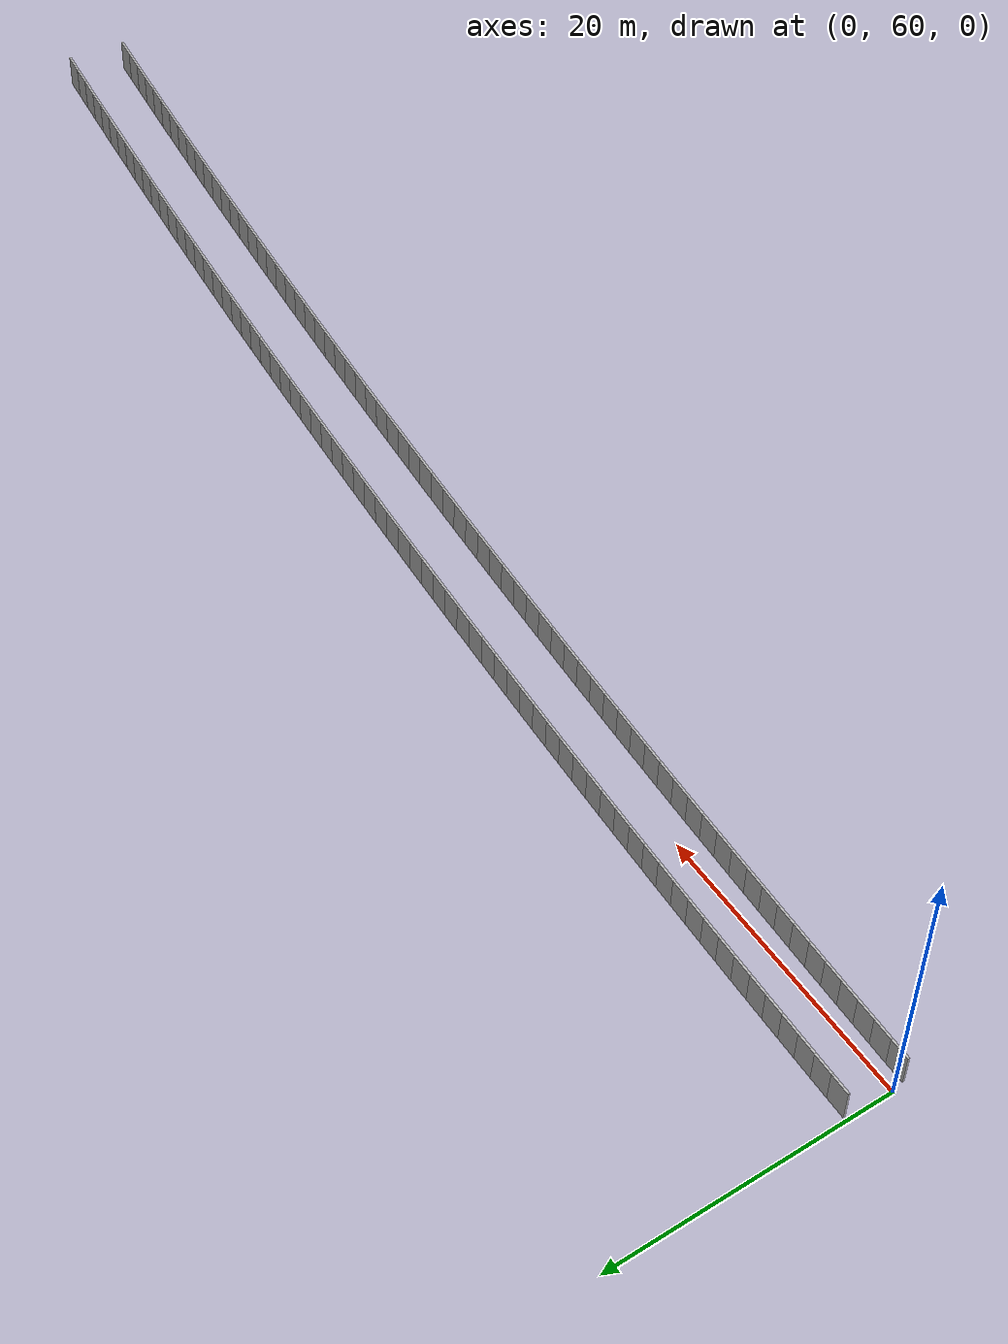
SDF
<sdf version="1.6">
 <model name="sps_1223">
  <static>1</static>
  <allow_auto_disable>0</allow_auto_disable>
  <link name="Wall2825">
   <collision name="collision"><geometry><box><size>1.49657 0.15 2.5</size></box></geometry></collision>
   <visual name="visual">
    <geometry><box><size>1.49657 0.15 2.5</size></box></geometry>
    <transparency>0.0</transparency>
   </visual>
   <pose>99.431 52.0302 1.25 0 -0 3.01741</pose>
  </link>
  <link name="Wall2826">
   <collision name="collision"><geometry><box><size>1.49641 0.15 2.5</size></box></geometry></collision>
   <visual name="visual">
    <geometry><box><size>1.49641 0.15 2.5</size></box></geometry>
    <transparency>0.0</transparency>
   </visual>
   <pose>97.9459 52.2144 1.25 0 -0 3.01896</pose>
  </link>
  <link name="Wall2827">
   <collision name="collision"><geometry><box><size>1.49656 0.15 2.5</size></box></geometry></collision>
   <visual name="visual">
    <geometry><box><size>1.49656 0.15 2.5</size></box></geometry>
    <transparency>0.0</transparency>
   </visual>
   <pose>96.4605 52.3963 1.25 0 -0 3.0205</pose>
  </link>
  <link name="Wall2828">
   <collision name="collision"><geometry><box><size>1.49651 0.15 2.5</size></box></geometry></collision>
   <visual name="visual">
    <geometry><box><size>1.49651 0.15 2.5</size></box></geometry>
    <transparency>0.0</transparency>
   </visual>
   <pose>94.9748 52.5759 1.25 0 -0 3.02209</pose>
  </link>
  <link name="Wall2829">
   <collision name="collision"><geometry><box><size>1.49664 0.15 2.5</size></box></geometry></collision>
   <visual name="visual">
    <geometry><box><size>1.49664 0.15 2.5</size></box></geometry>
    <transparency>0.0</transparency>
   </visual>
   <pose>93.4887 52.7533 1.25 0 -0 3.02346</pose>
  </link>
  <link name="Wall2830">
   <collision name="collision"><geometry><box><size>1.49649 0.15 2.5</size></box></geometry></collision>
   <visual name="visual">
    <geometry><box><size>1.49649 0.15 2.5</size></box></geometry>
    <transparency>0.0</transparency>
   </visual>
   <pose>92.0024 52.9283 1.25 0 -0 3.02534</pose>
  </link>
  <link name="Wall2831">
   <collision name="collision"><geometry><box><size>1.49624 0.15 2.5</size></box></geometry></collision>
   <visual name="visual">
    <geometry><box><size>1.49624 0.15 2.5</size></box></geometry>
    <transparency>0.0</transparency>
   </visual>
   <pose>90.516 53.1008 1.25 0 -0 3.0268</pose>
  </link>
  <link name="Wall2832">
   <collision name="collision"><geometry><box><size>1.49655 0.15 2.5</size></box></geometry></collision>
   <visual name="visual">
    <geometry><box><size>1.49655 0.15 2.5</size></box></geometry>
    <transparency>0.0</transparency>
   </visual>
   <pose>89.0293 53.2709 1.25 0 -0 3.02854</pose>
  </link>
  <link name="Wall2833">
   <collision name="collision"><geometry><box><size>1.49648 0.15 2.5</size></box></geometry></collision>
   <visual name="visual">
    <geometry><box><size>1.49648 0.15 2.5</size></box></geometry>
    <transparency>0.0</transparency>
   </visual>
   <pose>87.5423 53.4386 1.25 0 -0 3.03006</pose>
  </link>
  <link name="Wall2834">
   <collision name="collision"><geometry><box><size>1.49647 0.15 2.5</size></box></geometry></collision>
   <visual name="visual">
    <geometry><box><size>1.49647 0.15 2.5</size></box></geometry>
    <transparency>0.0</transparency>
   </visual>
   <pose>86.055 53.604 1.25 0 -0 3.03162</pose>
  </link>
  <link name="Wall2835">
   <collision name="collision"><geometry><box><size>1.49659 0.15 2.5</size></box></geometry></collision>
   <visual name="visual">
    <geometry><box><size>1.49659 0.15 2.5</size></box></geometry>
    <transparency>0.0</transparency>
   </visual>
   <pose>84.5673 53.7671 1.25 0 -0 3.03314</pose>
  </link>
  <link name="Wall2836">
   <collision name="collision"><geometry><box><size>1.49649 0.15 2.5</size></box></geometry></collision>
   <visual name="visual">
    <geometry><box><size>1.49649 0.15 2.5</size></box></geometry>
    <transparency>0.0</transparency>
   </visual>
   <pose>83.0795 53.9278 1.25 0 -0 3.03486</pose>
  </link>
  <link name="Wall2837">
   <collision name="collision"><geometry><box><size>1.49652 0.15 2.5</size></box></geometry></collision>
   <visual name="visual">
    <geometry><box><size>1.49652 0.15 2.5</size></box></geometry>
    <transparency>0.0</transparency>
   </visual>
   <pose>81.5914 54.0862 1.25 0 -0 3.03625</pose>
  </link>
  <link name="Wall2838">
   <collision name="collision"><geometry><box><size>1.49659 0.15 2.5</size></box></geometry></collision>
   <visual name="visual">
    <geometry><box><size>1.49659 0.15 2.5</size></box></geometry>
    <transparency>0.0</transparency>
   </visual>
   <pose>80.103 54.2422 1.25 0 -0 3.03811</pose>
  </link>
  <link name="Wall2839">
   <collision name="collision"><geometry><box><size>1.49664 0.15 2.5</size></box></geometry></collision>
   <visual name="visual">
    <geometry><box><size>1.49664 0.15 2.5</size></box></geometry>
    <transparency>0.0</transparency>
   </visual>
   <pose>78.6142 54.3958 1.25 0 -0 3.03942</pose>
  </link>
  <link name="Wall2840">
   <collision name="collision"><geometry><box><size>1.4963 0.15 2.5</size></box></geometry></collision>
   <visual name="visual">
    <geometry><box><size>1.4963 0.15 2.5</size></box></geometry>
    <transparency>0.0</transparency>
   </visual>
   <pose>77.1254 54.5471 1.25 0 -0 3.0412</pose>
  </link>
  <link name="Wall2841">
   <collision name="collision"><geometry><box><size>1.49649 0.15 2.5</size></box></geometry></collision>
   <visual name="visual">
    <geometry><box><size>1.49649 0.15 2.5</size></box></geometry>
    <transparency>0.0</transparency>
   </visual>
   <pose>75.6365 54.6959 1.25 0 -0 3.04281</pose>
  </link>
  <link name="Wall2842">
   <collision name="collision"><geometry><box><size>1.49653 0.15 2.5</size></box></geometry></collision>
   <visual name="visual">
    <geometry><box><size>1.49653 0.15 2.5</size></box></geometry>
    <transparency>0.0</transparency>
   </visual>
   <pose>74.1471 54.8424 1.25 0 -0 3.04425</pose>
  </link>
  <link name="Wall2843">
   <collision name="collision"><geometry><box><size>1.49641 0.15 2.5</size></box></geometry></collision>
   <visual name="visual">
    <geometry><box><size>1.49641 0.15 2.5</size></box></geometry>
    <transparency>0.0</transparency>
   </visual>
   <pose>72.6576 54.9866 1.25 0 -0 3.04588</pose>
  </link>
  <link name="Wall2844">
   <collision name="collision"><geometry><box><size>1.49662 0.15 2.5</size></box></geometry></collision>
   <visual name="visual">
    <geometry><box><size>1.49662 0.15 2.5</size></box></geometry>
    <transparency>0.0</transparency>
   </visual>
   <pose>71.1679 55.1285 1.25 0 -0 3.04741</pose>
  </link>
  <link name="Wall2845">
   <collision name="collision"><geometry><box><size>1.49641 0.15 2.5</size></box></geometry></collision>
   <visual name="visual">
    <geometry><box><size>1.49641 0.15 2.5</size></box></geometry>
    <transparency>0.0</transparency>
   </visual>
   <pose>69.6779 55.2681 1.25 0 -0 3.04895</pose>
  </link>
  <link name="Wall2846">
   <collision name="collision"><geometry><box><size>1.49643 0.15 2.5</size></box></geometry></collision>
   <visual name="visual">
    <geometry><box><size>1.49643 0.15 2.5</size></box></geometry>
    <transparency>0.0</transparency>
   </visual>
   <pose>68.1878 55.4053 1.25 0 -0 3.05059</pose>
  </link>
  <link name="Wall2847">
   <collision name="collision"><geometry><box><size>1.49658 0.15 2.5</size></box></geometry></collision>
   <visual name="visual">
    <geometry><box><size>1.49658 0.15 2.5</size></box></geometry>
    <transparency>0.0</transparency>
   </visual>
   <pose>66.6973 55.5401 1.25 0 -0 3.0522</pose>
  </link>
  <link name="Wall2848">
   <collision name="collision"><geometry><box><size>1.49655 0.15 2.5</size></box></geometry></collision>
   <visual name="visual">
    <geometry><box><size>1.49655 0.15 2.5</size></box></geometry>
    <transparency>0.0</transparency>
   </visual>
   <pose>65.2067 55.6725 1.25 0 -0 3.05379</pose>
  </link>
  <link name="Wall2849">
   <collision name="collision"><geometry><box><size>1.49658 0.15 2.5</size></box></geometry></collision>
   <visual name="visual">
    <geometry><box><size>1.49658 0.15 2.5</size></box></geometry>
    <transparency>0.0</transparency>
   </visual>
   <pose>63.7158 55.8025 1.25 0 -0 3.05543</pose>
  </link>
  <link name="Wall2850">
   <collision name="collision"><geometry><box><size>1.49633 0.15 2.5</size></box></geometry></collision>
   <visual name="visual">
    <geometry><box><size>1.49633 0.15 2.5</size></box></geometry>
    <transparency>0.0</transparency>
   </visual>
   <pose>62.2248 55.9302 1.25 0 -0 3.05689</pose>
  </link>
  <link name="Wall2851">
   <collision name="collision"><geometry><box><size>1.49654 0.15 2.5</size></box></geometry></collision>
   <visual name="visual">
    <geometry><box><size>1.49654 0.15 2.5</size></box></geometry>
    <transparency>0.0</transparency>
   </visual>
   <pose>60.7336 56.0555 1.25 0 -0 3.05862</pose>
  </link>
  <link name="Wall2852">
   <collision name="collision"><geometry><box><size>1.4966 0.15 2.5</size></box></geometry></collision>
   <visual name="visual">
    <geometry><box><size>1.4966 0.15 2.5</size></box></geometry>
    <transparency>0.0</transparency>
   </visual>
   <pose>59.2421 56.1784 1.25 0 -0 3.06014</pose>
  </link>
  <link name="Wall2853">
   <collision name="collision"><geometry><box><size>1.49653 0.15 2.5</size></box></geometry></collision>
   <visual name="visual">
    <geometry><box><size>1.49653 0.15 2.5</size></box></geometry>
    <transparency>0.0</transparency>
   </visual>
   <pose>57.7504 56.299 1.25 0 -0 3.06169</pose>
  </link>
  <link name="Wall2854">
   <collision name="collision"><geometry><box><size>1.4964 0.15 2.5</size></box></geometry></collision>
   <visual name="visual">
    <geometry><box><size>1.4964 0.15 2.5</size></box></geometry>
    <transparency>0.0</transparency>
   </visual>
   <pose>56.2586 56.4172 1.25 0 -0 3.06332</pose>
  </link>
  <link name="Wall2855">
   <collision name="collision"><geometry><box><size>1.49659 0.15 2.5</size></box></geometry></collision>
   <visual name="visual">
    <geometry><box><size>1.49659 0.15 2.5</size></box></geometry>
    <transparency>0.0</transparency>
   </visual>
   <pose>54.7666 56.5331 1.25 0 -0 3.06485</pose>
  </link>
  <link name="Wall2856">
   <collision name="collision"><geometry><box><size>1.4964 0.15 2.5</size></box></geometry></collision>
   <visual name="visual">
    <geometry><box><size>1.4964 0.15 2.5</size></box></geometry>
    <transparency>0.0</transparency>
   </visual>
   <pose>53.2744 56.6466 1.25 0 -0 3.06651</pose>
  </link>
  <link name="Wall2857">
   <collision name="collision"><geometry><box><size>1.49648 0.15 2.5</size></box></geometry></collision>
   <visual name="visual">
    <geometry><box><size>1.49648 0.15 2.5</size></box></geometry>
    <transparency>0.0</transparency>
   </visual>
   <pose>51.7821 56.7577 1.25 0 -0 3.06803</pose>
  </link>
  <link name="Wall2858">
   <collision name="collision"><geometry><box><size>1.49648 0.15 2.5</size></box></geometry></collision>
   <visual name="visual">
    <geometry><box><size>1.49648 0.15 2.5</size></box></geometry>
    <transparency>0.0</transparency>
   </visual>
   <pose>50.2895 56.8664 1.25 0 -0 3.06975</pose>
  </link>
  <link name="Wall2859">
   <collision name="collision"><geometry><box><size>1.49651 0.15 2.5</size></box></geometry></collision>
   <visual name="visual">
    <geometry><box><size>1.49651 0.15 2.5</size></box></geometry>
    <transparency>0.0</transparency>
   </visual>
   <pose>48.7968 56.9728 1.25 0 -0 3.07114</pose>
  </link>
  <link name="Wall2860">
   <collision name="collision"><geometry><box><size>1.49653 0.15 2.5</size></box></geometry></collision>
   <visual name="visual">
    <geometry><box><size>1.49653 0.15 2.5</size></box></geometry>
    <transparency>0.0</transparency>
   </visual>
   <pose>47.3039 57.077 1.25 0 -0 3.07269</pose>
  </link>
  <link name="Wall2861">
   <collision name="collision"><geometry><box><size>1.4966 0.15 2.5</size></box></geometry></collision>
   <visual name="visual">
    <geometry><box><size>1.4966 0.15 2.5</size></box></geometry>
    <transparency>0.0</transparency>
   </visual>
   <pose>45.8108 57.1787 1.25 0 -0 3.07445</pose>
  </link>
  <link name="Wall2862">
   <collision name="collision"><geometry><box><size>1.49639 0.15 2.5</size></box></geometry></collision>
   <visual name="visual">
    <geometry><box><size>1.49639 0.15 2.5</size></box></geometry>
    <transparency>0.0</transparency>
   </visual>
   <pose>44.3176 57.278 1.25 0 -0 3.07592</pose>
  </link>
  <link name="Wall2863">
   <collision name="collision"><geometry><box><size>1.49648 0.15 2.5</size></box></geometry></collision>
   <visual name="visual">
    <geometry><box><size>1.49648 0.15 2.5</size></box></geometry>
    <transparency>0.0</transparency>
   </visual>
   <pose>42.8244 57.375 1.25 0 -0 3.07756</pose>
  </link>
  <link name="Wall2864">
   <collision name="collision"><geometry><box><size>1.49651 0.15 2.5</size></box></geometry></collision>
   <visual name="visual">
    <geometry><box><size>1.49651 0.15 2.5</size></box></geometry>
    <transparency>0.0</transparency>
   </visual>
   <pose>41.3309 57.4696 1.25 0 -0 3.07911</pose>
  </link>
  <link name="Wall2865">
   <collision name="collision"><geometry><box><size>1.4966 0.15 2.5</size></box></geometry></collision>
   <visual name="visual">
    <geometry><box><size>1.4966 0.15 2.5</size></box></geometry>
    <transparency>0.0</transparency>
   </visual>
   <pose>39.8371 57.5618 1.25 0 -0 3.08075</pose>
  </link>
  <link name="Wall2866">
   <collision name="collision"><geometry><box><size>1.4964 0.15 2.5</size></box></geometry></collision>
   <visual name="visual">
    <geometry><box><size>1.4964 0.15 2.5</size></box></geometry>
    <transparency>0.0</transparency>
   </visual>
   <pose>38.3433 57.6516 1.25 0 -0 3.08237</pose>
  </link>
  <link name="Wall2867">
   <collision name="collision"><geometry><box><size>1.49652 0.15 2.5</size></box></geometry></collision>
   <visual name="visual">
    <geometry><box><size>1.49652 0.15 2.5</size></box></geometry>
    <transparency>0.0</transparency>
   </visual>
   <pose>36.8494 57.7391 1.25 0 -0 3.08381</pose>
  </link>
  <link name="Wall2868">
   <collision name="collision"><geometry><box><size>1.49631 0.15 2.5</size></box></geometry></collision>
   <visual name="visual">
    <geometry><box><size>1.49631 0.15 2.5</size></box></geometry>
    <transparency>0.0</transparency>
   </visual>
   <pose>35.3555 57.8242 1.25 0 -0 3.08556</pose>
  </link>
  <link name="Wall2869">
   <collision name="collision"><geometry><box><size>1.49667 0.15 2.5</size></box></geometry></collision>
   <visual name="visual">
    <geometry><box><size>1.49667 0.15 2.5</size></box></geometry>
    <transparency>0.0</transparency>
   </visual>
   <pose>33.8613 57.9069 1.25 0 -0 3.08704</pose>
  </link>
  <link name="Wall2870">
   <collision name="collision"><geometry><box><size>1.49648 0.15 2.5</size></box></geometry></collision>
   <visual name="visual">
    <geometry><box><size>1.49648 0.15 2.5</size></box></geometry>
    <transparency>0.0</transparency>
   </visual>
   <pose>32.3668 57.9873 1.25 0 -0 3.08867</pose>
  </link>
  <link name="Wall2871">
   <collision name="collision"><geometry><box><size>1.49654 0.15 2.5</size></box></geometry></collision>
   <visual name="visual">
    <geometry><box><size>1.49654 0.15 2.5</size></box></geometry>
    <transparency>0.0</transparency>
   </visual>
   <pose>30.8724 58.0653 1.25 0 -0 3.09022</pose>
  </link>
  <link name="Wall2872">
   <collision name="collision"><geometry><box><size>1.49649 0.15 2.5</size></box></geometry></collision>
   <visual name="visual">
    <geometry><box><size>1.49649 0.15 2.5</size></box></geometry>
    <transparency>0.0</transparency>
   </visual>
   <pose>29.3778 58.141 1.25 0 -0 3.09173</pose>
  </link>
  <link name="Wall2873">
   <collision name="collision"><geometry><box><size>1.49655 0.15 2.5</size></box></geometry></collision>
   <visual name="visual">
    <geometry><box><size>1.49655 0.15 2.5</size></box></geometry>
    <transparency>0.0</transparency>
   </visual>
   <pose>27.883 58.2143 1.25 0 -0 3.09345</pose>
  </link>
  <link name="Wall2874">
   <collision name="collision"><geometry><box><size>1.49644 0.15 2.5</size></box></geometry></collision>
   <visual name="visual">
    <geometry><box><size>1.49644 0.15 2.5</size></box></geometry>
    <transparency>0.0</transparency>
   </visual>
   <pose>26.3882 58.2852 1.25 0 -0 3.09496</pose>
  </link>
  <link name="Wall2875">
   <collision name="collision"><geometry><box><size>1.49651 0.15 2.5</size></box></geometry></collision>
   <visual name="visual">
    <geometry><box><size>1.49651 0.15 2.5</size></box></geometry>
    <transparency>0.0</transparency>
   </visual>
   <pose>24.8933 58.3538 1.25 0 -0 3.09655</pose>
  </link>
  <link name="Wall2876">
   <collision name="collision"><geometry><box><size>1.49658 0.15 2.5</size></box></geometry></collision>
   <visual name="visual">
    <geometry><box><size>1.49658 0.15 2.5</size></box></geometry>
    <transparency>0.0</transparency>
   </visual>
   <pose>23.3982 58.4199 1.25 0 -0 3.09827</pose>
  </link>
  <link name="Wall2877">
   <collision name="collision"><geometry><box><size>1.49649 0.15 2.5</size></box></geometry></collision>
   <visual name="visual">
    <geometry><box><size>1.49649 0.15 2.5</size></box></geometry>
    <transparency>0.0</transparency>
   </visual>
   <pose>21.9031 58.4836 1.25 0 -0 3.09973</pose>
  </link>
  <link name="Wall2878">
   <collision name="collision"><geometry><box><size>1.49645 0.15 2.5</size></box></geometry></collision>
   <visual name="visual">
    <geometry><box><size>1.49645 0.15 2.5</size></box></geometry>
    <transparency>0.0</transparency>
   </visual>
   <pose>20.4079 58.545 1.25 0 -0 3.10137</pose>
  </link>
  <link name="Wall2879">
   <collision name="collision"><geometry><box><size>1.49649 0.15 2.5</size></box></geometry></collision>
   <visual name="visual">
    <geometry><box><size>1.49649 0.15 2.5</size></box></geometry>
    <transparency>0.0</transparency>
   </visual>
   <pose>18.9126 58.6041 1.25 0 -0 3.10284</pose>
  </link>
  <link name="Wall2880">
   <collision name="collision"><geometry><box><size>1.49645 0.15 2.5</size></box></geometry></collision>
   <visual name="visual">
    <geometry><box><size>1.49645 0.15 2.5</size></box></geometry>
    <transparency>0.0</transparency>
   </visual>
   <pose>17.4172 58.6608 1.25 0 -0 3.10455</pose>
  </link>
  <link name="Wall2881">
   <collision name="collision"><geometry><box><size>1.49655 0.15 2.5</size></box></geometry></collision>
   <visual name="visual">
    <geometry><box><size>1.49655 0.15 2.5</size></box></geometry>
    <transparency>0.0</transparency>
   </visual>
   <pose>15.9217 58.7151 1.25 0 -0 3.10602</pose>
  </link>
  <link name="Wall2882">
   <collision name="collision"><geometry><box><size>1.49647 0.15 2.5</size></box></geometry></collision>
   <visual name="visual">
    <geometry><box><size>1.49647 0.15 2.5</size></box></geometry>
    <transparency>0.0</transparency>
   </visual>
   <pose>14.426 58.7671 1.25 0 -0 3.10765</pose>
  </link>
  <link name="Wall2883">
   <collision name="collision"><geometry><box><size>1.49657 0.15 2.5</size></box></geometry></collision>
   <visual name="visual">
    <geometry><box><size>1.49657 0.15 2.5</size></box></geometry>
    <transparency>0.0</transparency>
   </visual>
   <pose>12.9304 58.8167 1.25 0 -0 3.10925</pose>
  </link>
  <link name="Wall2884">
   <collision name="collision"><geometry><box><size>1.4965 0.15 2.5</size></box></geometry></collision>
   <visual name="visual">
    <geometry><box><size>1.4965 0.15 2.5</size></box></geometry>
    <transparency>0.0</transparency>
   </visual>
   <pose>11.4346 58.8639 1.25 0 -0 3.11084</pose>
  </link>
  <link name="Wall2885">
   <collision name="collision"><geometry><box><size>1.49642 0.15 2.5</size></box></geometry></collision>
   <visual name="visual">
    <geometry><box><size>1.49642 0.15 2.5</size></box></geometry>
    <transparency>0.0</transparency>
   </visual>
   <pose>9.93877 58.9087 1.25 0 -0 3.11247</pose>
  </link>
  <link name="Wall2886">
   <collision name="collision"><geometry><box><size>1.49642 0.15 2.5</size></box></geometry></collision>
   <visual name="visual">
    <geometry><box><size>1.49642 0.15 2.5</size></box></geometry>
    <transparency>0.0</transparency>
   </visual>
   <pose>8.44295 58.9512 1.25 0 -0 3.11394</pose>
  </link>
  <link name="Wall2887">
   <collision name="collision"><geometry><box><size>1.49666 0.15 2.5</size></box></geometry></collision>
   <visual name="visual">
    <geometry><box><size>1.49666 0.15 2.5</size></box></geometry>
    <transparency>0.0</transparency>
   </visual>
   <pose>6.94695 58.9913 1.25 0 -0 3.11565</pose>
  </link>
  <link name="Wall2888">
   <collision name="collision"><geometry><box><size>1.49648 0.15 2.5</size></box></geometry></collision>
   <visual name="visual">
    <geometry><box><size>1.49648 0.15 2.5</size></box></geometry>
    <transparency>0.0</transparency>
   </visual>
   <pose>5.45086 59.029 1.25 0 -0 3.11712</pose>
  </link>
  <link name="Wall2889">
   <collision name="collision"><geometry><box><size>1.49636 0.15 2.5</size></box></geometry></collision>
   <visual name="visual">
    <geometry><box><size>1.49636 0.15 2.5</size></box></geometry>
    <transparency>0.0</transparency>
   </visual>
   <pose>3.95486 59.0643 1.25 0 -0 3.11887</pose>
  </link>
  <link name="Wall2890">
   <collision name="collision"><geometry><box><size>1.49656 0.15 2.5</size></box></geometry></collision>
   <visual name="visual">
    <geometry><box><size>1.49656 0.15 2.5</size></box></geometry>
    <transparency>0.0</transparency>
   </visual>
   <pose>2.45876 59.0973 1.25 0 -0 3.12022</pose>
  </link>
  <link name="Wall2891">
   <collision name="collision"><geometry><box><size>1.49651 0.15 2.5</size></box></geometry></collision>
   <visual name="visual">
    <geometry><box><size>1.49651 0.15 2.5</size></box></geometry>
    <transparency>0.0</transparency>
   </visual>
   <pose>0.962547 59.128 1.25 0 -0 3.12193</pose>
  </link>
  <link name="Wall5436">
   <collision name="collision"><geometry><box><size>1.50297 0.15 2.5</size></box></geometry></collision>
   <visual name="visual">
    <geometry><box><size>1.50297 0.15 2.5</size></box></geometry>
    <transparency>0.0</transparency>
   </visual>
   <pose>99.9435 56.138 1.25 0 -0 3.01737</pose>
  </link>
  <link name="Wall5437">
   <collision name="collision"><geometry><box><size>1.50307 0.15 2.5</size></box></geometry></collision>
   <visual name="visual">
    <geometry><box><size>1.50307 0.15 2.5</size></box></geometry>
    <transparency>0.0</transparency>
   </visual>
   <pose>98.452 56.3231 1.25 0 -0 3.01885</pose>
  </link>
  <link name="Wall5438">
   <collision name="collision"><geometry><box><size>1.50323 0.15 2.5</size></box></geometry></collision>
   <visual name="visual">
    <geometry><box><size>1.50323 0.15 2.5</size></box></geometry>
    <transparency>0.0</transparency>
   </visual>
   <pose>96.96 56.5058 1.25 0 -0 3.02063</pose>
  </link>
  <link name="Wall5439">
   <collision name="collision"><geometry><box><size>1.50306 0.15 2.5</size></box></geometry></collision>
   <visual name="visual">
    <geometry><box><size>1.50306 0.15 2.5</size></box></geometry>
    <transparency>0.0</transparency>
   </visual>
   <pose>95.4676 56.686 1.25 0 -0 3.02225</pose>
  </link>
  <link name="Wall5440">
   <collision name="collision"><geometry><box><size>1.50307 0.15 2.5</size></box></geometry></collision>
   <visual name="visual">
    <geometry><box><size>1.50307 0.15 2.5</size></box></geometry>
    <transparency>0.0</transparency>
   </visual>
   <pose>93.9752 56.864 1.25 0 -0 3.02356</pose>
  </link>
  <link name="Wall5441">
   <collision name="collision"><geometry><box><size>1.50296 0.15 2.5</size></box></geometry></collision>
   <visual name="visual">
    <geometry><box><size>1.50296 0.15 2.5</size></box></geometry>
    <transparency>0.0</transparency>
   </visual>
   <pose>92.4824 57.0397 1.25 0 -0 3.02527</pose>
  </link>
  <link name="Wall5442">
   <collision name="collision"><geometry><box><size>1.50306 0.15 2.5</size></box></geometry></collision>
   <visual name="visual">
    <geometry><box><size>1.50306 0.15 2.5</size></box></geometry>
    <transparency>0.0</transparency>
   </visual>
   <pose>90.9895 57.213 1.25 0 -0 3.02679</pose>
  </link>
  <link name="Wall5443">
   <collision name="collision"><geometry><box><size>1.50325 0.15 2.5</size></box></geometry></collision>
   <visual name="visual">
    <geometry><box><size>1.50325 0.15 2.5</size></box></geometry>
    <transparency>0.0</transparency>
   </visual>
   <pose>89.4961 57.3839 1.25 0 -0 3.02852</pose>
  </link>
  <link name="Wall5444">
   <collision name="collision"><geometry><box><size>1.50295 0.15 2.5</size></box></geometry></collision>
   <visual name="visual">
    <geometry><box><size>1.50295 0.15 2.5</size></box></geometry>
    <transparency>0.0</transparency>
   </visual>
   <pose>88.0024 57.5524 1.25 0 -0 3.02997</pose>
  </link>
  <link name="Wall5445">
   <collision name="collision"><geometry><box><size>1.50328 0.15 2.5</size></box></geometry></collision>
   <visual name="visual">
    <geometry><box><size>1.50328 0.15 2.5</size></box></geometry>
    <transparency>0.0</transparency>
   </visual>
   <pose>86.5085 57.7186 1.25 0 -0 3.03163</pose>
  </link>
  <link name="Wall5446">
   <collision name="collision"><geometry><box><size>1.50302 0.15 2.5</size></box></geometry></collision>
   <visual name="visual">
    <geometry><box><size>1.50302 0.15 2.5</size></box></geometry>
    <transparency>0.0</transparency>
   </visual>
   <pose>85.0143 57.8824 1.25 0 -0 3.0332</pose>
  </link>
  <link name="Wall5447">
   <collision name="collision"><geometry><box><size>1.50313 0.15 2.5</size></box></geometry></collision>
   <visual name="visual">
    <geometry><box><size>1.50313 0.15 2.5</size></box></geometry>
    <transparency>0.0</transparency>
   </visual>
   <pose>83.52 58.0438 1.25 0 -0 3.0348</pose>
  </link>
  <link name="Wall5448">
   <collision name="collision"><geometry><box><size>1.50293 0.15 2.5</size></box></geometry></collision>
   <visual name="visual">
    <geometry><box><size>1.50293 0.15 2.5</size></box></geometry>
    <transparency>0.0</transparency>
   </visual>
   <pose>82.0254 58.2028 1.25 0 -0 3.03642</pose>
  </link>
  <link name="Wall5449">
   <collision name="collision"><geometry><box><size>1.50307 0.15 2.5</size></box></geometry></collision>
   <visual name="visual">
    <geometry><box><size>1.50307 0.15 2.5</size></box></geometry>
    <transparency>0.0</transparency>
   </visual>
   <pose>80.5305 58.3595 1.25 0 -0 3.0379</pose>
  </link>
  <link name="Wall5450">
   <collision name="collision"><geometry><box><size>1.50319 0.15 2.5</size></box></geometry></collision>
   <visual name="visual">
    <geometry><box><size>1.50319 0.15 2.5</size></box></geometry>
    <transparency>0.0</transparency>
   </visual>
   <pose>79.0354 58.5139 1.25 0 -0 3.0395</pose>
  </link>
  <link name="Wall5451">
   <collision name="collision"><geometry><box><size>1.50299 0.15 2.5</size></box></geometry></collision>
   <visual name="visual">
    <geometry><box><size>1.50299 0.15 2.5</size></box></geometry>
    <transparency>0.0</transparency>
   </visual>
   <pose>77.54 58.6658 1.25 0 -0 3.0412</pose>
  </link>
  <link name="Wall5452">
   <collision name="collision"><geometry><box><size>1.50313 0.15 2.5</size></box></geometry></collision>
   <visual name="visual">
    <geometry><box><size>1.50313 0.15 2.5</size></box></geometry>
    <transparency>0.0</transparency>
   </visual>
   <pose>76.0444 58.8153 1.25 0 -0 3.04272</pose>
  </link>
  <link name="Wall5453">
   <collision name="collision"><geometry><box><size>1.50314 0.15 2.5</size></box></geometry></collision>
   <visual name="visual">
    <geometry><box><size>1.50314 0.15 2.5</size></box></geometry>
    <transparency>0.0</transparency>
   </visual>
   <pose>74.5485 58.9625 1.25 0 -0 3.04431</pose>
  </link>
  <link name="Wall5454">
   <collision name="collision"><geometry><box><size>1.50305 0.15 2.5</size></box></geometry></collision>
   <visual name="visual">
    <geometry><box><size>1.50305 0.15 2.5</size></box></geometry>
    <transparency>0.0</transparency>
   </visual>
   <pose>73.0524 59.1074 1.25 0 -0 3.04577</pose>
  </link>
  <link name="Wall5455">
   <collision name="collision"><geometry><box><size>1.50307 0.15 2.5</size></box></geometry></collision>
   <visual name="visual">
    <geometry><box><size>1.50307 0.15 2.5</size></box></geometry>
    <transparency>0.0</transparency>
   </visual>
   <pose>71.5561 59.25 1.25 0 -0 3.04737</pose>
  </link>
  <link name="Wall5456">
   <collision name="collision"><geometry><box><size>1.50308 0.15 2.5</size></box></geometry></collision>
   <visual name="visual">
    <geometry><box><size>1.50308 0.15 2.5</size></box></geometry>
    <transparency>0.0</transparency>
   </visual>
   <pose>70.0596 59.3902 1.25 0 -0 3.049</pose>
  </link>
  <link name="Wall5457">
   <collision name="collision"><geometry><box><size>1.50321 0.15 2.5</size></box></geometry></collision>
   <visual name="visual">
    <geometry><box><size>1.50321 0.15 2.5</size></box></geometry>
    <transparency>0.0</transparency>
   </visual>
   <pose>68.5627 59.5279 1.25 0 -0 3.05072</pose>
  </link>
  <link name="Wall5458">
   <collision name="collision"><geometry><box><size>1.50295 0.15 2.5</size></box></geometry></collision>
   <visual name="visual">
    <geometry><box><size>1.50295 0.15 2.5</size></box></geometry>
    <transparency>0.0</transparency>
   </visual>
   <pose>67.0658 59.6632 1.25 0 -0 3.05217</pose>
  </link>
  <link name="Wall5459">
   <collision name="collision"><geometry><box><size>1.50304 0.15 2.5</size></box></geometry></collision>
   <visual name="visual">
    <geometry><box><size>1.50304 0.15 2.5</size></box></geometry>
    <transparency>0.0</transparency>
   </visual>
   <pose>65.5687 59.7962 1.25 0 -0 3.05381</pose>
  </link>
  <link name="Wall5460">
   <collision name="collision"><geometry><box><size>1.50314 0.15 2.5</size></box></geometry></collision>
   <visual name="visual">
    <geometry><box><size>1.50314 0.15 2.5</size></box></geometry>
    <transparency>0.0</transparency>
   </visual>
   <pose>64.0713 59.9268 1.25 0 -0 3.0554</pose>
  </link>
  <link name="Wall5461">
   <collision name="collision"><geometry><box><size>1.503 0.15 2.5</size></box></geometry></collision>
   <visual name="visual">
    <geometry><box><size>1.503 0.15 2.5</size></box></geometry>
    <transparency>0.0</transparency>
   </visual>
   <pose>62.5737 60.055 1.25 0 -0 3.05698</pose>
  </link>
  <link name="Wall5462">
   <collision name="collision"><geometry><box><size>1.50316 0.15 2.5</size></box></geometry></collision>
   <visual name="visual">
    <geometry><box><size>1.50316 0.15 2.5</size></box></geometry>
    <transparency>0.0</transparency>
   </visual>
   <pose>61.0759 60.1808 1.25 0 -0 3.05858</pose>
  </link>
  <link name="Wall5463">
   <collision name="collision"><geometry><box><size>1.50322 0.15 2.5</size></box></geometry></collision>
   <visual name="visual">
    <geometry><box><size>1.50322 0.15 2.5</size></box></geometry>
    <transparency>0.0</transparency>
   </visual>
   <pose>59.5778 60.3043 1.25 0 -0 3.06009</pose>
  </link>
  <link name="Wall5464">
   <collision name="collision"><geometry><box><size>1.50297 0.15 2.5</size></box></geometry></collision>
   <visual name="visual">
    <geometry><box><size>1.50297 0.15 2.5</size></box></geometry>
    <transparency>0.0</transparency>
   </visual>
   <pose>58.0796 60.4255 1.25 0 -0 3.06167</pose>
  </link>
  <link name="Wall5465">
   <collision name="collision"><geometry><box><size>1.50301 0.15 2.5</size></box></geometry></collision>
   <visual name="visual">
    <geometry><box><size>1.50301 0.15 2.5</size></box></geometry>
    <transparency>0.0</transparency>
   </visual>
   <pose>56.5813 60.5442 1.25 0 -0 3.06338</pose>
  </link>
  <link name="Wall5466">
   <collision name="collision"><geometry><box><size>1.5032 0.15 2.5</size></box></geometry></collision>
   <visual name="visual">
    <geometry><box><size>1.5032 0.15 2.5</size></box></geometry>
    <transparency>0.0</transparency>
   </visual>
   <pose>55.0827 60.6605 1.25 0 -0 3.0649</pose>
  </link>
  <link name="Wall5467">
   <collision name="collision"><geometry><box><size>1.50308 0.15 2.5</size></box></geometry></collision>
   <visual name="visual">
    <geometry><box><size>1.50308 0.15 2.5</size></box></geometry>
    <transparency>0.0</transparency>
   </visual>
   <pose>53.5839 60.7745 1.25 0 -0 3.06648</pose>
  </link>
  <link name="Wall5468">
   <collision name="collision"><geometry><box><size>1.50302 0.15 2.5</size></box></geometry></collision>
   <visual name="visual">
    <geometry><box><size>1.50302 0.15 2.5</size></box></geometry>
    <transparency>0.0</transparency>
   </visual>
   <pose>52.085 60.8861 1.25 0 -0 3.06807</pose>
  </link>
  <link name="Wall5469">
   <collision name="collision"><geometry><box><size>1.50309 0.15 2.5</size></box></geometry></collision>
   <visual name="visual">
    <geometry><box><size>1.50309 0.15 2.5</size></box></geometry>
    <transparency>0.0</transparency>
   </visual>
   <pose>50.5859 60.9953 1.25 0 -0 3.0697</pose>
  </link>
  <link name="Wall5470">
   <collision name="collision"><geometry><box><size>1.50295 0.15 2.5</size></box></geometry></collision>
   <visual name="visual">
    <geometry><box><size>1.50295 0.15 2.5</size></box></geometry>
    <transparency>0.0</transparency>
   </visual>
   <pose>49.0867 61.1023 1.25 0 -0 3.07099</pose>
  </link>
  <link name="Wall5471">
   <collision name="collision"><geometry><box><size>1.50313 0.15 2.5</size></box></geometry></collision>
   <visual name="visual">
    <geometry><box><size>1.50313 0.15 2.5</size></box></geometry>
    <transparency>0.0</transparency>
   </visual>
   <pose>47.5873 61.207 1.25 0 -0 3.07275</pose>
  </link>
  <link name="Wall5472">
   <collision name="collision"><geometry><box><size>1.50302 0.15 2.5</size></box></geometry></collision>
   <visual name="visual">
    <geometry><box><size>1.50302 0.15 2.5</size></box></geometry>
    <transparency>0.0</transparency>
   </visual>
   <pose>46.0877 61.3091 1.25 0 -0 3.07446</pose>
  </link>
  <link name="Wall5473">
   <collision name="collision"><geometry><box><size>1.50305 0.15 2.5</size></box></geometry></collision>
   <visual name="visual">
    <geometry><box><size>1.50305 0.15 2.5</size></box></geometry>
    <transparency>0.0</transparency>
   </visual>
   <pose>44.5879 61.4088 1.25 0 -0 3.07596</pose>
  </link>
  <link name="Wall5474">
   <collision name="collision"><geometry><box><size>1.50308 0.15 2.5</size></box></geometry></collision>
   <visual name="visual">
    <geometry><box><size>1.50308 0.15 2.5</size></box></geometry>
    <transparency>0.0</transparency>
   </visual>
   <pose>43.088 61.5062 1.25 0 -0 3.07755</pose>
  </link>
  <link name="Wall5475">
   <collision name="collision"><geometry><box><size>1.5033 0.15 2.5</size></box></geometry></collision>
   <visual name="visual">
    <geometry><box><size>1.5033 0.15 2.5</size></box></geometry>
    <transparency>0.0</transparency>
   </visual>
   <pose>41.5879 61.6012 1.25 0 -0 3.07915</pose>
  </link>
  <link name="Wall5476">
   <collision name="collision"><geometry><box><size>1.50297 0.15 2.5</size></box></geometry></collision>
   <visual name="visual">
    <geometry><box><size>1.50297 0.15 2.5</size></box></geometry>
    <transparency>0.0</transparency>
   </visual>
   <pose>40.0876 61.6938 1.25 0 -0 3.08072</pose>
  </link>
  <link name="Wall5477">
   <collision name="collision"><geometry><box><size>1.50306 0.15 2.5</size></box></geometry></collision>
   <visual name="visual">
    <geometry><box><size>1.50306 0.15 2.5</size></box></geometry>
    <transparency>0.0</transparency>
   </visual>
   <pose>38.5873 61.784 1.25 0 -0 3.08235</pose>
  </link>
  <link name="Wall5478">
   <collision name="collision"><geometry><box><size>1.50311 0.15 2.5</size></box></geometry></collision>
   <visual name="visual">
    <geometry><box><size>1.50311 0.15 2.5</size></box></geometry>
    <transparency>0.0</transparency>
   </visual>
   <pose>37.0868 61.8718 1.25 0 -0 3.08394</pose>
  </link>
  <link name="Wall5479">
   <collision name="collision"><geometry><box><size>1.50316 0.15 2.5</size></box></geometry></collision>
   <visual name="visual">
    <geometry><box><size>1.50316 0.15 2.5</size></box></geometry>
    <transparency>0.0</transparency>
   </visual>
   <pose>35.5861 61.9573 1.25 0 -0 3.08545</pose>
  </link>
  <link name="Wall5480">
   <collision name="collision"><geometry><box><size>1.50302 0.15 2.5</size></box></geometry></collision>
   <visual name="visual">
    <geometry><box><size>1.50302 0.15 2.5</size></box></geometry>
    <transparency>0.0</transparency>
   </visual>
   <pose>34.0853 62.0404 1.25 0 -0 3.08711</pose>
  </link>
  <link name="Wall5481">
   <collision name="collision"><geometry><box><size>1.50309 0.15 2.5</size></box></geometry></collision>
   <visual name="visual">
    <geometry><box><size>1.50309 0.15 2.5</size></box></geometry>
    <transparency>0.0</transparency>
   </visual>
   <pose>32.5844 62.1211 1.25 0 -0 3.08862</pose>
  </link>
  <link name="Wall5482">
   <collision name="collision"><geometry><box><size>1.5032 0.15 2.5</size></box></geometry></collision>
   <visual name="visual">
    <geometry><box><size>1.5032 0.15 2.5</size></box></geometry>
    <transparency>0.0</transparency>
   </visual>
   <pose>31.0833 62.1995 1.25 0 -0 3.09021</pose>
  </link>
  <link name="Wall5483">
   <collision name="collision"><geometry><box><size>1.50308 0.15 2.5</size></box></geometry></collision>
   <visual name="visual">
    <geometry><box><size>1.50308 0.15 2.5</size></box></geometry>
    <transparency>0.0</transparency>
   </visual>
   <pose>29.5821 62.2755 1.25 0 -0 3.09183</pose>
  </link>
  <link name="Wall5484">
   <collision name="collision"><geometry><box><size>1.5029 0.15 2.5</size></box></geometry></collision>
   <visual name="visual">
    <geometry><box><size>1.5029 0.15 2.5</size></box></geometry>
    <transparency>0.0</transparency>
   </visual>
   <pose>28.0809 62.3491 1.25 0 -0 3.09341</pose>
  </link>
  <link name="Wall5485">
   <collision name="collision"><geometry><box><size>1.50304 0.15 2.5</size></box></geometry></collision>
   <visual name="visual">
    <geometry><box><size>1.50304 0.15 2.5</size></box></geometry>
    <transparency>0.0</transparency>
   </visual>
   <pose>26.5796 62.4203 1.25 0 -0 3.095</pose>
  </link>
  <link name="Wall5486">
   <collision name="collision"><geometry><box><size>1.50318 0.15 2.5</size></box></geometry></collision>
   <visual name="visual">
    <geometry><box><size>1.50318 0.15 2.5</size></box></geometry>
    <transparency>0.0</transparency>
   </visual>
   <pose>25.0781 62.4892 1.25 0 -0 3.09647</pose>
  </link>
  <link name="Wall5487">
   <collision name="collision"><geometry><box><size>1.50318 0.15 2.5</size></box></geometry></collision>
   <visual name="visual">
    <geometry><box><size>1.50318 0.15 2.5</size></box></geometry>
    <transparency>0.0</transparency>
   </visual>
   <pose>23.5763 62.5557 1.25 0 -0 3.09821</pose>
  </link>
  <link name="Wall5488">
   <collision name="collision"><geometry><box><size>1.50314 0.15 2.5</size></box></geometry></collision>
   <visual name="visual">
    <geometry><box><size>1.50314 0.15 2.5</size></box></geometry>
    <transparency>0.0</transparency>
   </visual>
   <pose>22.0745 62.6197 1.25 0 -0 3.0998</pose>
  </link>
  <link name="Wall5489">
   <collision name="collision"><geometry><box><size>1.50299 0.15 2.5</size></box></geometry></collision>
   <visual name="visual">
    <geometry><box><size>1.50299 0.15 2.5</size></box></geometry>
    <transparency>0.0</transparency>
   </visual>
   <pose>20.5727 62.6814 1.25 0 -0 3.10126</pose>
  </link>
  <link name="Wall5490">
   <collision name="collision"><geometry><box><size>1.50295 0.15 2.5</size></box></geometry></collision>
   <visual name="visual">
    <geometry><box><size>1.50295 0.15 2.5</size></box></geometry>
    <transparency>0.0</transparency>
   </visual>
   <pose>19.0709 62.7407 1.25 0 -0 3.103</pose>
  </link>
  <link name="Wall5491">
   <collision name="collision"><geometry><box><size>1.50299 0.15 2.5</size></box></geometry></collision>
   <visual name="visual">
    <geometry><box><size>1.50299 0.15 2.5</size></box></geometry>
    <transparency>0.0</transparency>
   </visual>
   <pose>17.5691 62.7976 1.25 0 -0 3.10443</pose>
  </link>
  <link name="Wall5492">
   <collision name="collision"><geometry><box><size>1.50315 0.15 2.5</size></box></geometry></collision>
   <visual name="visual">
    <geometry><box><size>1.50315 0.15 2.5</size></box></geometry>
    <transparency>0.0</transparency>
   </visual>
   <pose>16.067 62.8522 1.25 0 -0 3.10606</pose>
  </link>
  <link name="Wall5493">
   <collision name="collision"><geometry><box><size>1.50331 0.15 2.5</size></box></geometry></collision>
   <visual name="visual">
    <geometry><box><size>1.50331 0.15 2.5</size></box></geometry>
    <transparency>0.0</transparency>
   </visual>
   <pose>14.5647 62.9044 1.25 0 -0 3.10768</pose>
  </link>
  <link name="Wall5494">
   <collision name="collision"><geometry><box><size>1.50298 0.15 2.5</size></box></geometry></collision>
   <visual name="visual">
    <geometry><box><size>1.50298 0.15 2.5</size></box></geometry>
    <transparency>0.0</transparency>
   </visual>
   <pose>13.0623 62.9542 1.25 0 -0 3.10926</pose>
  </link>
  <link name="Wall5495">
   <collision name="collision"><geometry><box><size>1.50309 0.15 2.5</size></box></geometry></collision>
   <visual name="visual">
    <geometry><box><size>1.50309 0.15 2.5</size></box></geometry>
    <transparency>0.0</transparency>
   </visual>
   <pose>11.5601 63.0016 1.25 0 -0 3.11085</pose>
  </link>
  <link name="Wall5496">
   <collision name="collision"><geometry><box><size>1.50302 0.15 2.5</size></box></geometry></collision>
   <visual name="visual">
    <geometry><box><size>1.50302 0.15 2.5</size></box></geometry>
    <transparency>0.0</transparency>
   </visual>
   <pose>10.0577 63.0466 1.25 0 -0 3.11243</pose>
  </link>
  <link name="Wall5497">
   <collision name="collision"><geometry><box><size>1.50319 0.15 2.5</size></box></geometry></collision>
   <visual name="visual">
    <geometry><box><size>1.50319 0.15 2.5</size></box></geometry>
    <transparency>0.0</transparency>
   </visual>
   <pose>8.55517 63.0892 1.25 0 -0 3.11406</pose>
  </link>
  <link name="Wall5498">
   <collision name="collision"><geometry><box><size>1.50314 0.15 2.5</size></box></geometry></collision>
   <visual name="visual">
    <geometry><box><size>1.50314 0.15 2.5</size></box></geometry>
    <transparency>0.0</transparency>
   </visual>
   <pose>7.05254 63.1295 1.25 0 -0 3.11548</pose>
  </link>
  <link name="Wall5499">
   <collision name="collision"><geometry><box><size>1.50301 0.15 2.5</size></box></geometry></collision>
   <visual name="visual">
    <geometry><box><size>1.50301 0.15 2.5</size></box></geometry>
    <transparency>0.0</transparency>
   </visual>
   <pose>5.54995 63.1674 1.25 0 -0 3.11727</pose>
  </link>
  <link name="Wall5500">
   <collision name="collision"><geometry><box><size>1.5032 0.15 2.5</size></box></geometry></collision>
   <visual name="visual">
    <geometry><box><size>1.5032 0.15 2.5</size></box></geometry>
    <transparency>0.0</transparency>
   </visual>
   <pose>4.04726 63.2029 1.25 0 -0 3.11869</pose>
  </link>
  <link name="Wall5501">
   <collision name="collision"><geometry><box><size>1.50296 0.15 2.5</size></box></geometry></collision>
   <visual name="visual">
    <geometry><box><size>1.50296 0.15 2.5</size></box></geometry>
    <transparency>0.0</transparency>
   </visual>
   <pose>2.54455 63.2361 1.25 0 -0 3.12031</pose>
  </link>
  <link name="Wall5502">
   <collision name="collision"><geometry><box><size>1.50328 0.15 2.5</size></box></geometry></collision>
   <visual name="visual">
    <geometry><box><size>1.50328 0.15 2.5</size></box></geometry>
    <transparency>0.0</transparency>
   </visual>
   <pose>1.04174 63.2668 1.25 0 -0 3.12202</pose>
  </link>
 </model>
</sdf>
